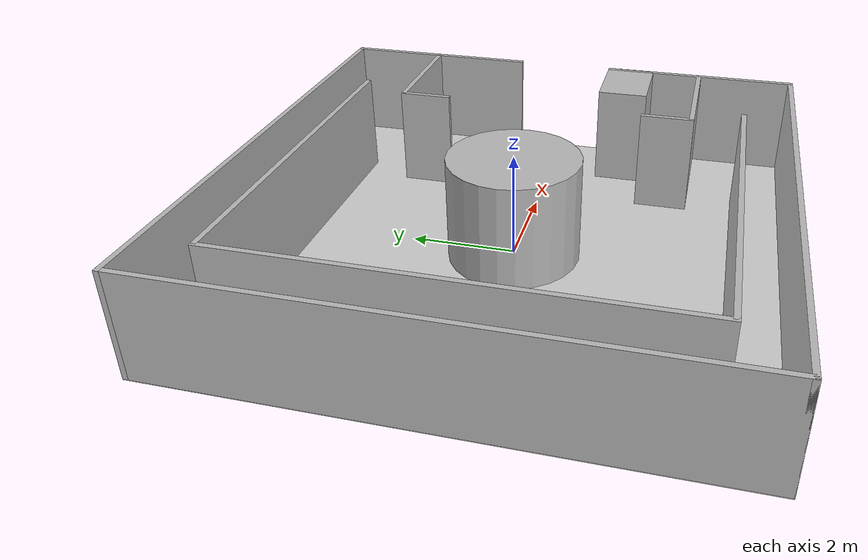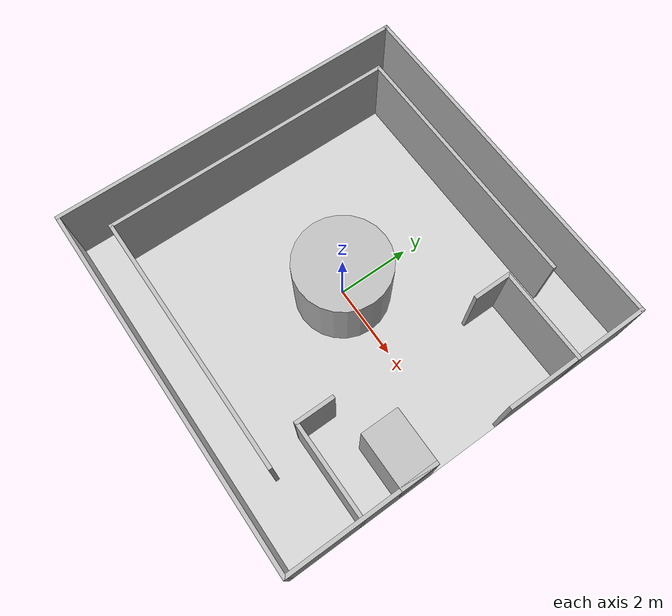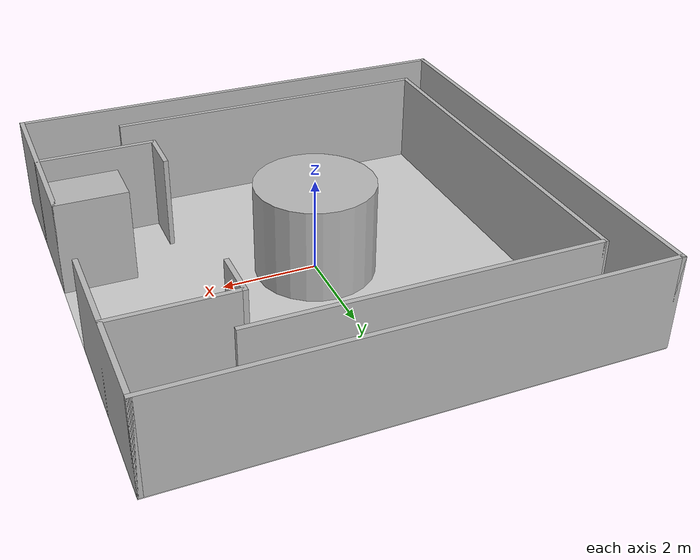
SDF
<sdf version="1.6">
 <world name="icy_world">
  <include><uri>model://sun</uri></include>
  <include><uri>model://icy_exterior</uri></include>
  <include><uri>model://icy_interior</uri></include>
 </world>
</sdf>

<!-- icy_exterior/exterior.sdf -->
<sdf version="1.6">
  <model name="icy_exterior">

    <static>true</static>

    <link name="floor">
      <collision name="floor_col">
        <geometry>
          <plane>
            <normal>0 0 1</normal>
            <size>10 10</size>
          </plane>
        </geometry>
        <surface>
          <contact>
            <collide_bitmask>0xffff</collide_bitmask>
          </contact>
          <friction>
            <ode>
              <mu>100</mu>
              <mu2>50</mu2>
            </ode>
          </friction>
        </surface>
      </collision>
      <visual name="floor_vis">
        <cast_shadows>false</cast_shadows>
        <geometry>
          <plane>
            <normal>0 0 1</normal>
            <size>10 10</size>
          </plane>
        </geometry>
        <material>
          <script>
            <uri>file://media/icy.material</uri>
            <name>Ice</name>
          </script>
        </material>
      </visual>
    </link>

        <!-- Left Wall. -->
    <link name="wall_left">
      <pose>0 -4.95 1 0 0 0</pose>
      <must_be_base_link>true</must_be_base_link>
      <collision name="left_collision">
        <geometry>
          <box>
            <size>10 0.1 2</size>
          </box>
        </geometry>
      </collision>
      <visual name="left_visual">
        <geometry>
          <box>
            <size>10 0.1 2</size>
          </box>
        </geometry>
        <material>
          <script>
            <uri>file://media/icy.material</uri>
            <name>Ice</name>
          </script>
        </material>
      </visual>
    </link>

    <!-- Right wall. -->
    <link name="wall_right">
      <pose>0 4.95 1 0 0 0</pose>
      <must_be_base_link>true</must_be_base_link>
      <collision name="right_collision">
        <geometry>
          <box>
            <size>10 0.1 2</size>
          </box>
        </geometry>
      </collision>
      <visual name="right_visual">
        <geometry>
          <box>
            <size>10 0.1 2</size>
          </box>
        </geometry>
        <material>
          <script>
            <uri>file://media/icy.material</uri>
            <name>Ice</name>
          </script>
        </material>
      </visual>
    </link>

    <!-- Back wall. -->
    <link name="wall_back">
      <pose>-4.95 0 1 0 0 0</pose>
      <must_be_base_link>true</must_be_base_link>
      <collision name="back_collision">
        <geometry>
          <box>
            <size>0.1 10 2</size>
          </box>
        </geometry>
      </collision>
      <visual name="back_visual">
        <geometry>
          <box>
            <size>0.1 10 2</size>
          </box>
        </geometry>
        <material>
          <script>
            <uri>file://media/icy.material</uri>
            <name>Ice</name>
          </script>
        </material>
      </visual>
    </link>

    <!-- Front wall, left half -->
    <link name="wall_front_left">
      <pose>4.95 0 1 0 0 0</pose>
      <must_be_base_link>true</must_be_base_link>
      <collision name="front_left_collision">
        <pose>0 -3 0 0 0 0</pose>
        <geometry>
          <box>
            <size>0.1 4 2</size>
          </box>
        </geometry>
      </collision>
      <visual name="front_left_visual">
        <pose>0 -3 0 0 0 0</pose>
        <geometry>
          <box>
            <size>0.1 4 2</size>
          </box>
        </geometry>
        <material>
          <script>
            <uri>file://media/icy.material</uri>
            <name>Ice</name>
          </script>
        </material>
      </visual>
    </link>

    <!-- Front wall, right half -->
    <link name="wall_front_right">
      <pose>4.95 0 1 0 0 0</pose>
      <must_be_base_link>true</must_be_base_link>
      <collision name="front_right_collision">
        <pose>0 3 0 0 0 0</pose>
        <geometry>
          <box>
            <size>0.1 4 2</size>
          </box>
        </geometry>
      </collision>
      <visual name="front_right_visual">
        <pose>0 3 0 0 0 0</pose>
        <geometry>
          <box>
            <size>0.1 4 2</size>
          </box>
        </geometry>
        <material>
          <script>
            <uri>file://media/icy.material</uri>
            <name>Ice</name>
          </script>
        </material>
      </visual>
    </link>

  </model>
</sdf>

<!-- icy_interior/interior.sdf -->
<sdf version="1.6">
  <model name="icy_interior">

    <static>true</static>

    <!-- Wall A. -->
    <link name="A">
      <pose>3.75 3 1 0 0 0</pose>
      <must_be_base_link>true</must_be_base_link>
      <collision name="a_col">
        <geometry>
          <box>
            <size>2.5 0.1 2</size>
          </box>
        </geometry>
      </collision>
      <visual name="a_vis">
        <geometry>
          <box>
            <size>2.5 0.1 2</size>
          </box>
        </geometry>
      </visual>
    </link>

    <!-- Wall B. -->
    <link name="B">
      <pose>3.75 -3 1 0 0 0</pose>
      <must_be_base_link>true</must_be_base_link>
      <collision name="b_col">
        <geometry>
          <box>
            <size>2.5 0.1 2</size>
          </box>
        </geometry>
      </collision>
      <visual name="b_vis">
        <geometry>
          <box>
            <size>2.5 0.1 2</size>
          </box>
        </geometry>
      </visual>
    </link>

    <!-- Wall C. (y is not exactly 2.5 to offset for the wall width) -->
    <link name="C">
      <pose>2.5 2.525 1 0 0 0</pose>
      <must_be_base_link>true</must_be_base_link>
      <collision name="c_col">
        <geometry>
          <box>
            <size>0.1 1.05 2</size>
          </box>
        </geometry>
      </collision>
      <visual name="c_vis">
        <geometry>
          <box>
            <size>0.1 1.05 2</size>
          </box>
        </geometry>
      </visual>
    </link>

    <!-- Wall D. (y is not exactly 2.5 to offset for the wall width) -->
    <link name="D">
      <pose>2.5 -2.525 1 0 0 0</pose>
      <must_be_base_link>true</must_be_base_link>
      <collision name="d_col">
        <geometry>
          <box>
            <size>0.1 1.05 2</size>
          </box>
        </geometry>
      </collision>
      <visual name="d_vis">
        <geometry>
          <box>
            <size>0.1 1.05 2</size>
          </box>
        </geometry>
      </visual>
    </link>

    <!-- Cylinder E. -->
    <link name="E">
      <pose>0 0 1 0 0 0</pose>
      <must_be_base_link>true</must_be_base_link>
      <collision name="e_col">
        <geometry>
          <cylinder>
            <radius>1.25</radius>
            <length>2</length>
          </cylinder>
        </geometry>
      </collision>
      <visual name="e_vis">
        <geometry>
          <cylinder>
            <radius>1.25</radius>
            <length>2</length>
          </cylinder>
        </geometry>
      </visual>
    </link>

    <!-- Wall F. -->
    <link name="F">
      <pose>-0.5 4 1 0 0 0</pose>
      <must_be_base_link>true</must_be_base_link>
      <collision name="f_col">
        <geometry>
          <box>
            <size>7 0.1 2</size>
          </box>
        </geometry>
      </collision>
      <visual name="f_vis">
        <geometry>
          <box>
            <size>7 0.1 2</size>
          </box>
        </geometry>
      </visual>
    </link>

    <!-- Wall G. -->
    <link name="G">
      <pose>-0.5 -4 1 0 0 0</pose>
      <must_be_base_link>true</must_be_base_link>
      <collision name="f_col">
        <geometry>
          <box>
            <size>7 0.1 2</size>
          </box>
        </geometry>
      </collision>
      <visual name="f_vis">
        <geometry>
          <box>
            <size>7 0.1 2</size>
          </box>
        </geometry>
      </visual>
    </link>

    <!-- Wall H. -->
    <link name="H">
      <pose>-4 0 1 0 0 0</pose>
      <must_be_base_link>true</must_be_base_link>
      <collision name="f_col">
        <geometry>
          <box>
            <size>0.1 8.1 2</size>
          </box>
        </geometry>
      </collision>
      <visual name="f_vis">
        <geometry>
          <box>
            <size>0.1 8.1 2</size>
          </box>
        </geometry>
      </visual>
    </link>

    <!-- Block I. -->
    <link name="I">
      <pose>4.25 -1.5 1 0 0 0</pose>
      <must_be_base_link>true</must_be_base_link>
      <collision name="i_col">
        <geometry>
          <box>
            <size>1.5 1 2</size>
          </box>
        </geometry>
      </collision>
      <visual name="i_vis">
        <geometry>
          <box>
            <size>1.5 1 2</size>
          </box>
        </geometry>
      </visual>
    </link>

  </model>
</sdf>
